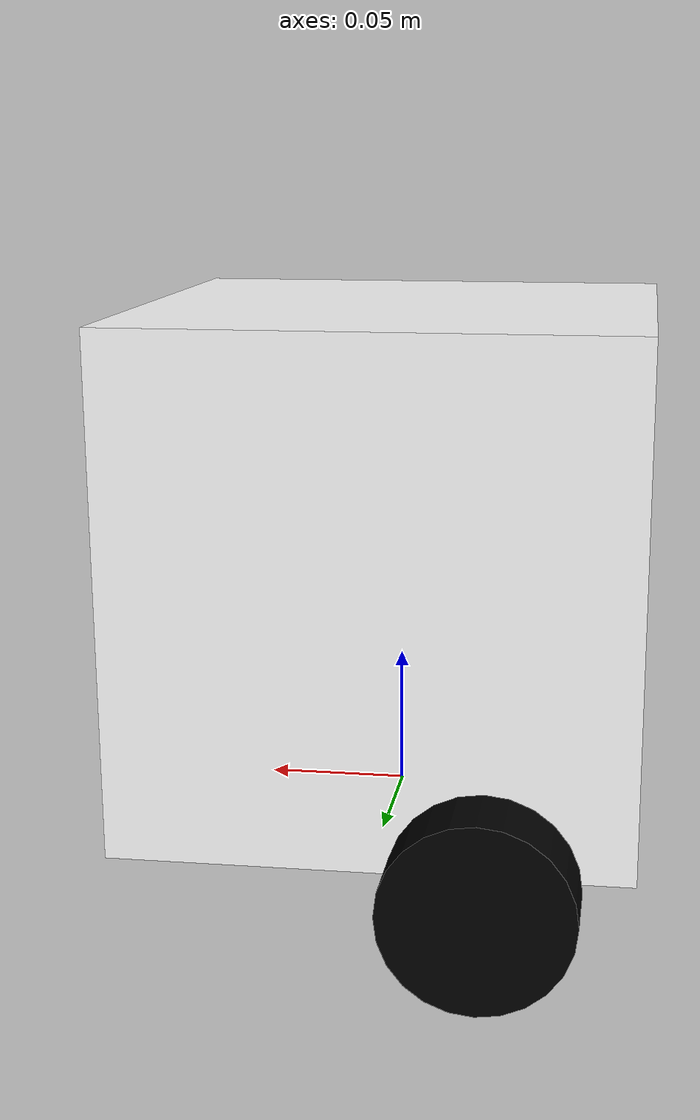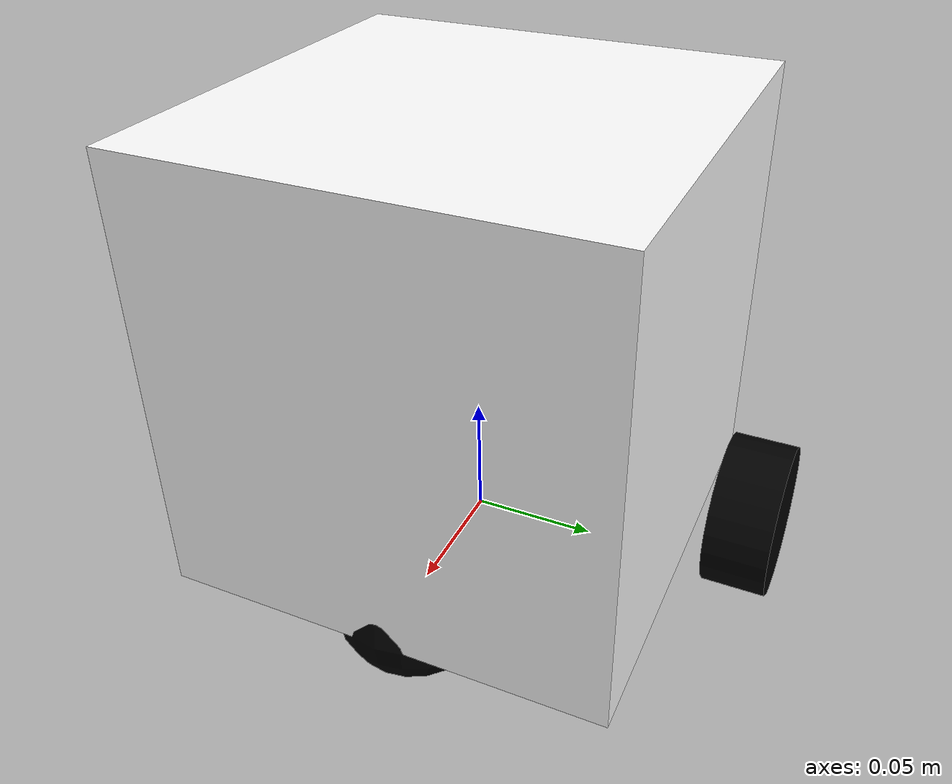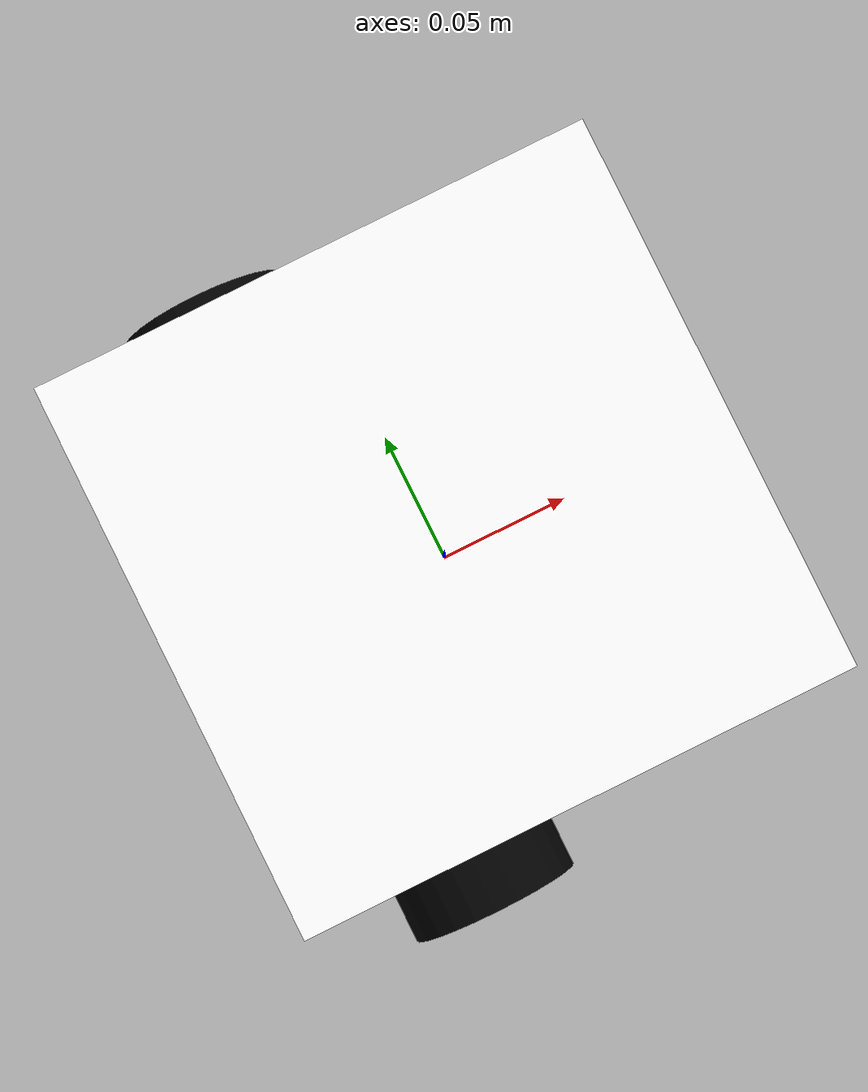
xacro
<?xml version="1.0"?>
<robot xmlns:xacro="http://www.ros.org/wiki/xacro" >

  <!-- File included -->
  <xacro:include filename="inertial_macros.xacro"/>

  <!-- Define material -->
  <material name="white">
    <color rgba="1 1 1 1"/>
  </material>

  <material name="orange">
    <color rgba="1 0.3 0.1 1"/>
  </material>

  <material name="blue">
    <color rgba="0.2 0.2 1 1"/>
  </material>

  <material name="black">
    <color rgba="0 0 0 1"/>
  </material>

  <material name="red">
    <color rgba="1 0 0 1"/>
  </material>

  <!-- BASE LINK -->
  <link name="base_link"></link>

  <!-- BASE FOOTPRINT -->
  <joint name="base_footprint_joint" type="fixed">
    <parent link="base_link"/>
    <child link="base_footprint"/>
    <origin xyz="0 0 0" rpy="0 0 0"/>
  </joint>

  <link name="base_footprint"></link>

  <!-- CHASSIS -->
  <joint name="chassis_joint" type="fixed">
    <parent link="base_link"/>
    <child link="chassis"/>
    <origin xyz="-0.09 0 0"/>
  </joint>

  <link name="chassis" type="fixed">
    <visual>
      <origin xyz="0.09 0 0.09"/>
      <geometry>
        <box size="0.18 0.18 0.18"/>
      </geometry>
      <material name="white"/>
    </visual>
    <collision>
      <origin xyz="0.09 0 0.09"/>
      <geometry>
        <box size="0.18 0.18 0.18"/>
      </geometry>
    </collision>
    <xacro:inertial_cube mass="1.5" x="0.18" y="0.18" z="0.18">
      <origin xyz="0.09 0 0.09" rpy="0 0 0"/>
    </xacro:inertial_cube>
  </link>

  <!-- WHEELS -->
  <joint name="left_wheel_joint" type="continuous">
    <parent link="base_link"/>
    <child link="left_wheel"/>
    <origin xyz="-0.04 0.11 0" rpy="-${pi/2} 0 0"/>
    <axis xyz="0 0 1"/>
  </joint>

  <link name="left_wheel">
    <visual>
      <geometry>
        <cylinder radius="0.0325" length="0.027"/>
      </geometry>
      <material name="black"/>
    </visual>
    <collision>
      <geometry>
        <cylinder radius="0.0325" length="0.027"/>
      </geometry>
    </collision>
    <xacro:inertial_cylinder mass="0.115" radius="0.0325" length="0.027">
      <origin xyz="0 0 0" rpy="0 0 0"/>
    </xacro:inertial_cylinder>
  </link>

  <joint name="right_wheel_joint" type="continuous">
    <parent link="base_link"/>
    <child link="right_wheel"/>
    <origin xyz="-0.04 -0.11 0" rpy="${pi/2} 0 0"/>
    <axis xyz="0 0 -1"/>
  </joint>

  <link name="right_wheel">
    <visual>
      <geometry>
        <cylinder radius="0.0325" length="0.027"/>
      </geometry>
      <material name="black"/>
    </visual>
    <collision>
      <geometry>
        <cylinder radius="0.0325" length="0.027"/>
      </geometry>
    </collision>
    <xacro:inertial_cylinder mass="0.115" radius="0.0325" length="0.027">
      <origin xyz="0 0 0" rpy="0 0 0"/>
    </xacro:inertial_cylinder>
  </link>

  <joint name="caster_wheel_joint" type="fixed">
    <parent link="chassis"/>
    <child link="caster_wheel"/>
    <origin xyz="0.15 0 0"/>
  </joint>

  <link name="caster_wheel">
    <visual>
      <geometry>
        <sphere radius="0.032"/>
      </geometry>
      <material name="black"/>
    </visual>
    <collision>
      <geometry>
        <sphere radius="0.032"/>
      </geometry>
    </collision>
    <xacro:inertial_sphere mass="0.032" radius="0.032">
      <origin xyz="0 0 0" rpy="0 0 0"/>
    </xacro:inertial_sphere>
  </link>

  <!-- Gazebo refs -->
  <gazebo reference="chassis">
    <mu1>1.0</mu1>
    <mu2>1.0</mu2>
  </gazebo>

  <gazebo reference="left_wheel">
    <mu1>1.0</mu1>
    <mu2>1.0</mu2>
  </gazebo>

  <gazebo reference="right_wheel">
    <mu1>1.0</mu1>
    <mu2>1.0</mu2>
  </gazebo>

  <gazebo reference="caster_wheel">
    <mu1>0.0001</mu1>
    <mu2>0.0001</mu2>
  </gazebo>

</robot>

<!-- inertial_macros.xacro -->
<robot xmlns:xacro="http://www.ros.org/wiki/xacro" >

  <xacro:macro name="inertial_sphere" params="mass radius *origin">
    <inertial>
      <xacro:insert_block name="origin"/>
      <mass value="${mass}" />
      <inertia ixx="${(2/5) * mass * (radius*radius)}" ixy="0.0" ixz="0.0"
        iyy="${(2/5) * mass * (radius*radius)}" iyz="0.0"
        izz="${(2/5) * mass * (radius*radius)}" />
    </inertial>
  </xacro:macro>

  <xacro:macro name="inertial_box" params="mass x y z *origin">
    <inertial>
      <xacro:insert_block name="origin"/>
      <mass value="${mass}" />
      <inertia ixx="${(1/12) * mass * (y*y+z*z)}" ixy="0.0" ixz="0.0"
        iyy="${(1/12) * mass * (x*x+z*z)}" iyz="0.0"
        izz="${(1/12) * mass * (x*x+y*y)}" />
    </inertial>
  </xacro:macro>

  <xacro:macro name="inertial_cube" params="mass x y z *origin">
    <inertial>
      <xacro:insert_block name="origin"/>
      <mass value="${mass}" />
      <inertia ixx="${(1/6) * mass * (x*x)}" ixy="0.0" ixz="0.0"
        iyy="${(1/6) * mass * (y*y)}" iyz="0.0"
        izz="${(1/6) * mass * (z*z)}"/>
    </inertial>
  </xacro:macro>

  <xacro:macro name="inertial_cylinder" params="mass length radius *origin">
    <inertial>
      <xacro:insert_block name="origin"/>
      <mass value="${mass}" />
      <inertia ixx="${(1/12) * mass * (3*radius*radius + length*length)}" ixy="0.0" ixz="0.0"
        iyy="${(1/12) * mass * (3*radius*radius + length*length)}" iyz="0.0"
        izz="${(1/2) * mass * (radius*radius)}" />
    </inertial>
  </xacro:macro>

</robot>
